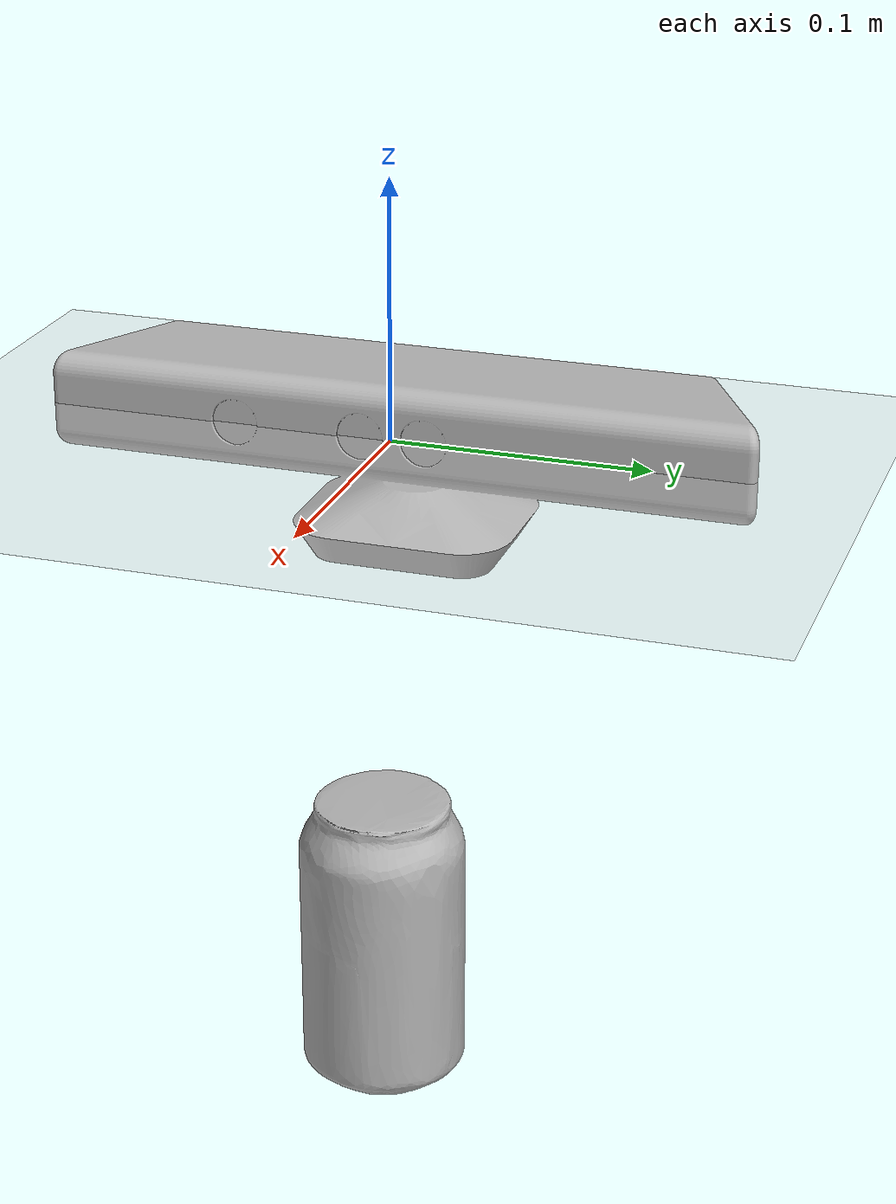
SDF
<sdf version="1.6">
 <world name="default">
  <light name="sun" type="directional">
   <pose>0 0 10 0 -0 0</pose>
   <diffuse>0.8 0.8 0.8 1</diffuse>
   <specular>0.1 0.1 0.1 1</specular>
   <attenuation>
    <range>1000</range>
    <constant>0.9</constant>
    <linear>0.01</linear>
    <quadratic>0.001</quadratic>
   </attenuation>
   <direction>-0.5 0.5 -1</direction>
  </light>
  <model name="ground_plane">
   <static>1</static>
   <link name="link">
    <collision name="collision">
     <geometry><plane><normal>0 0 1</normal><size>100 100</size></plane></geometry>
     <surface><friction><ode><mu>100</mu><mu2>50</mu2></ode></friction></surface>
    </collision>
    <visual name="visual">
     <cast_shadows>0</cast_shadows>
     <geometry><plane><normal>0 0 1</normal><size>100 100</size></plane></geometry>
     <material>
      <script><uri>file://media/materials/scripts/gazebo.material</uri><name>Gazebo/Grey</name></script>
     </material>
    </visual>
   </link>
  </model>
  <gravity>0 0 -9.8</gravity>
  <magnetic_field>6e-06 2.3e-05 -4.2e-05</magnetic_field>
  <atmosphere type="adiabatic"/>
  <physics name="default_physics" default="0" type="ode">
   <max_step_size>0.001</max_step_size>
   <real_time_factor>1</real_time_factor>
   <real_time_update_rate>1000</real_time_update_rate>
  </physics>
  <scene><ambient>0.4 0.4 0.4 1</ambient><background>0.7 0.7 0.7 1</background><shadows>1</shadows></scene>
  <spherical_coordinates>
   <surface_model>EARTH_WGS84</surface_model>
   <latitude_deg>0</latitude_deg>
   <longitude_deg>0</longitude_deg>
   <elevation>0</elevation>
   <heading_deg>0</heading_deg>
  </spherical_coordinates>
  <model name="kinect">
   <static>0</static>
   <link name="link">
    <inertial>
     <mass>0.1</mass>
     <inertia><ixx>1</ixx><ixy>0</ixy><ixz>0</ixz><iyy>1</iyy><iyz>0</iyz><izz>1</izz></inertia>
    </inertial>
    <collision name="collision"><geometry><box><size>0.073 0.276 0.072</size></box></geometry></collision>
    <visual name="visual">
     <geometry><mesh><uri>model://kinect/meshes/kinect.dae</uri><scale>1 1 1</scale></mesh></geometry>
    </visual>
    <sensor name="camera" type="depth">
     <update_rate>20</update_rate>
     <camera name="__default__">
      <horizontal_fov>1.0472</horizontal_fov>
      <image><width>640</width><height>480</height><format>R8G8B8</format></image>
      <clip><near>0.05</near><far>3</far></clip>
     </camera>
     <plugin name="camera_plugin" filename="libgazebo_ros_openni_kinect.so">
      <baseline>0.2</baseline>
      <alwaysOn>true</alwaysOn>
      <updateRate>0.0</updateRate>
      <cameraName>camera_ir</cameraName>
      <imageTopicName>/camera/depth/image_raw</imageTopicName>
      <cameraInfoTopicName>/camera/depth/camera_info</cameraInfoTopicName>
      <depthImageTopicName>/camera/depth/image_raw</depthImageTopicName>
      <depthImageInfoTopicName>/camera/depth/camera_info</depthImageInfoTopicName>
      <pointCloudTopicName>/camera/depth/points</pointCloudTopicName>
      <frameName>lens_link</frameName>
      <pointCloudCutoff>0.05</pointCloudCutoff>
      <distortionK1>0</distortionK1>
      <distortionK2>0</distortionK2>
      <distortionK3>0</distortionK3>
      <distortionT1>0</distortionT1>
      <distortionT2>0</distortionT2>
      <CxPrime>0</CxPrime>
      <Cx>0</Cx>
      <Cy>0</Cy>
      <focalLength>0</focalLength>
      <hackBaseline>0</hackBaseline>
     </plugin>
    </sensor>
    <gravity>0</gravity>
   </link>
  </model>
  <model name="coke_can">
   <link name="link">
    <inertial>
     <mass>0.39</mass>
     <inertia><ixx>0.00058</ixx><ixy>0</ixy><ixz>0</ixz><iyy>0.00058</iyy><iyz>0</iyz><izz>0.00019</izz></inertia>
    </inertial>
    <collision name="collision">
     <pose>0 0 -0.46 0 -0 0</pose>
     <geometry><mesh><uri>model://coke_can/meshes/coke_can.dae</uri><scale>1 1 1</scale></mesh></geometry>
    </collision>
    <visual name="visual">
     <pose>0 0 -0.46 0 -0 0</pose>
     <geometry><mesh><uri>model://coke_can/meshes/coke_can.dae</uri><scale>1 1 1</scale></mesh></geometry>
    </visual>
   </link>
  </model>
 </world>
</sdf>
